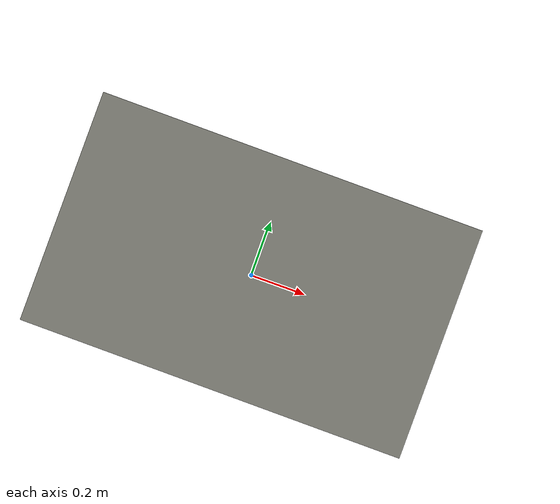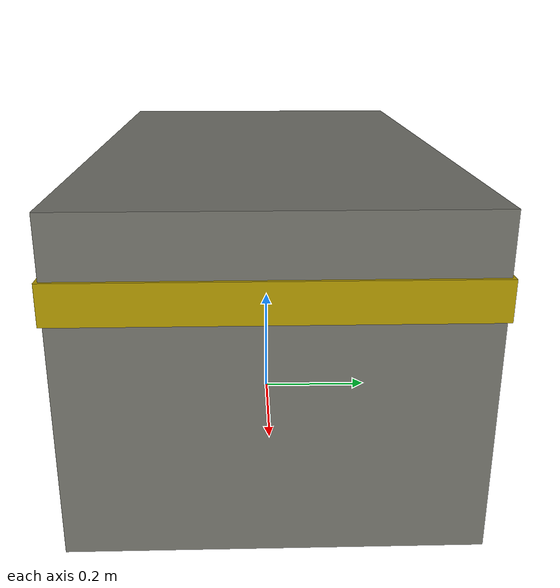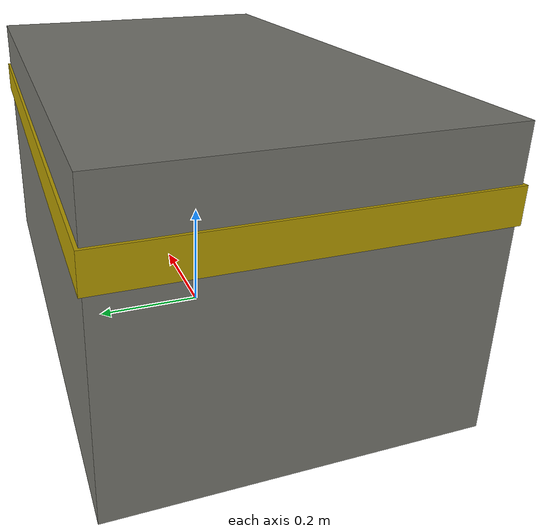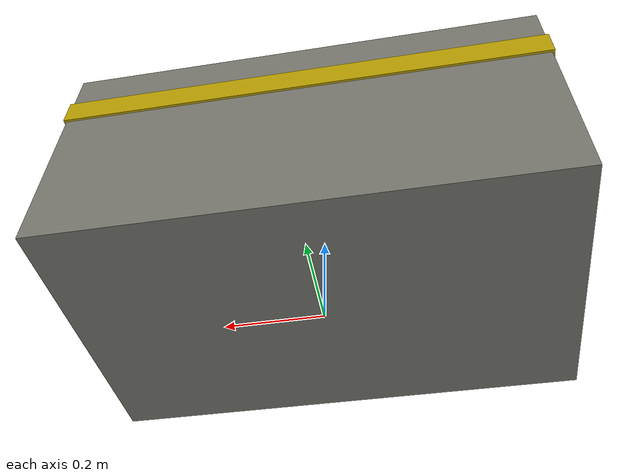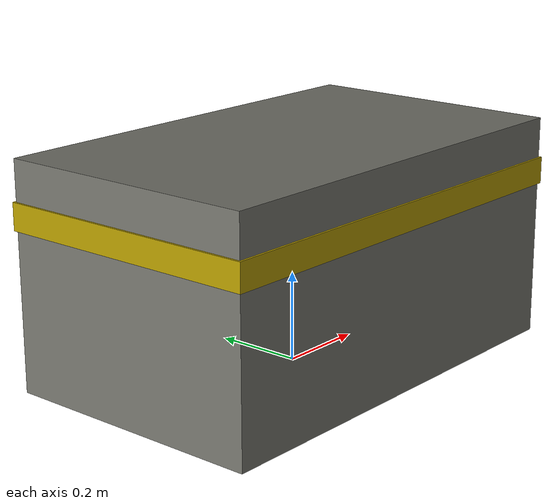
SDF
<?xml version="1.0"?>
<sdf version="1.9">
  <model name="equipment_crate">
    <static>true</static>
    <link name="body">
      <!-- Main crate body -->
      <visual name="crate_visual">
        <pose>0 0 0.25 0 0 0</pose>
        <geometry>
          <box><size>1.0 0.6 0.5</size></box>
        </geometry>
        <material>
          <ambient>0.45 0.45 0.42 1</ambient>
          <diffuse>0.45 0.45 0.42 1</diffuse>
          <specular>0.2 0.2 0.2 1</specular>
        </material>
      </visual>
      <!-- Yellow hazard stripe -->
      <visual name="stripe_visual">
        <pose>0 0 0.38 0 0 0</pose>
        <geometry>
          <box><size>1.01 0.61 0.06</size></box>
        </geometry>
        <material>
          <ambient>0.7 0.6 0.0 1</ambient>
          <diffuse>0.7 0.6 0.0 1</diffuse>
        </material>
      </visual>
      <collision name="collision">
        <pose>0 0 0.25 0 0 0</pose>
        <geometry>
          <box><size>1.0 0.6 0.5</size></box>
        </geometry>
      </collision>
    </link>
  </model>
</sdf>
